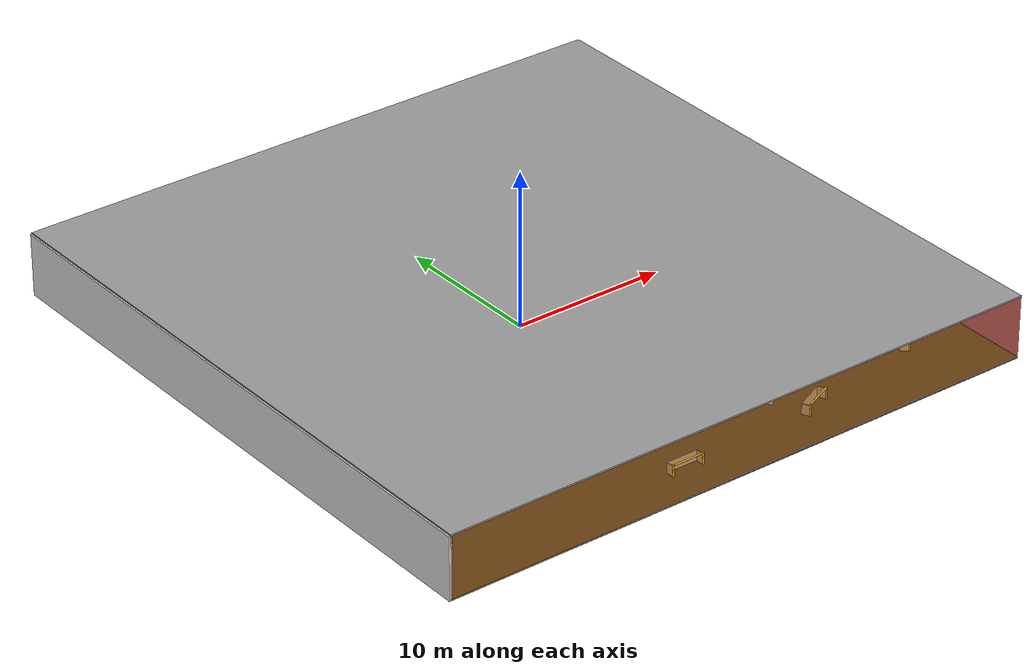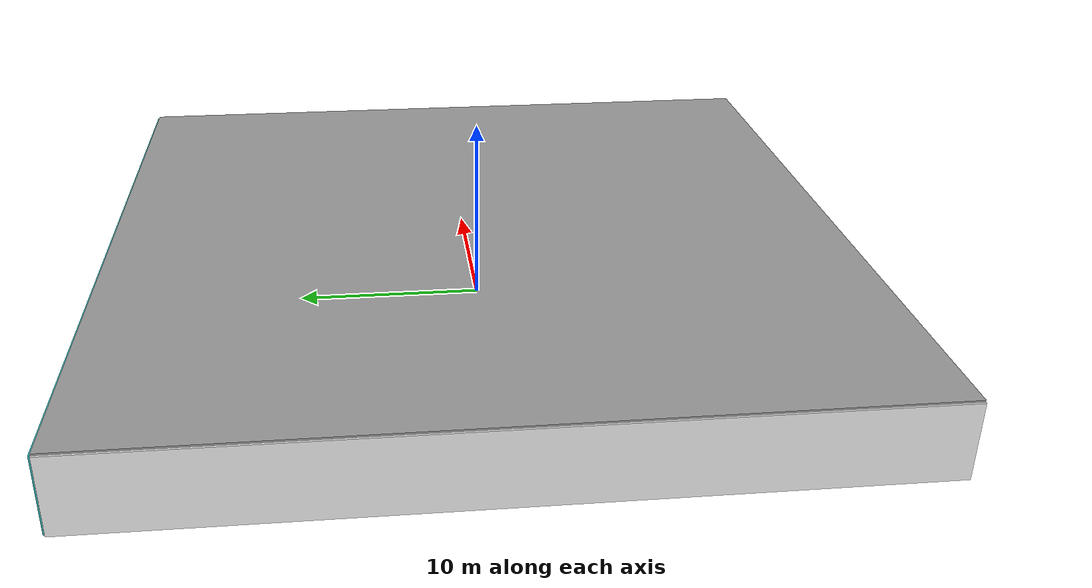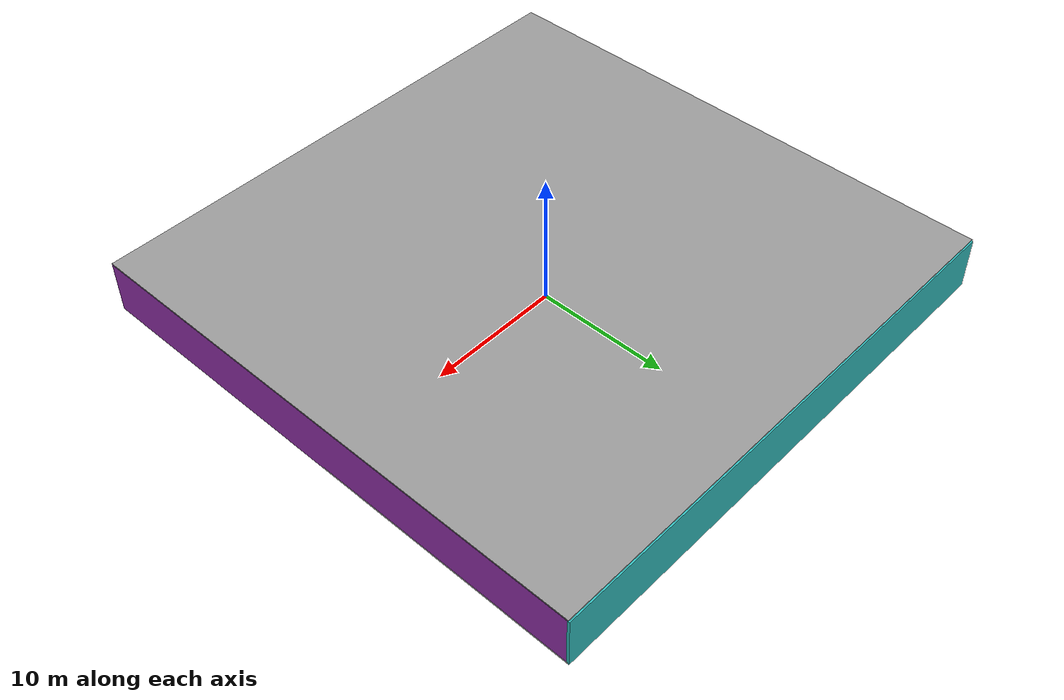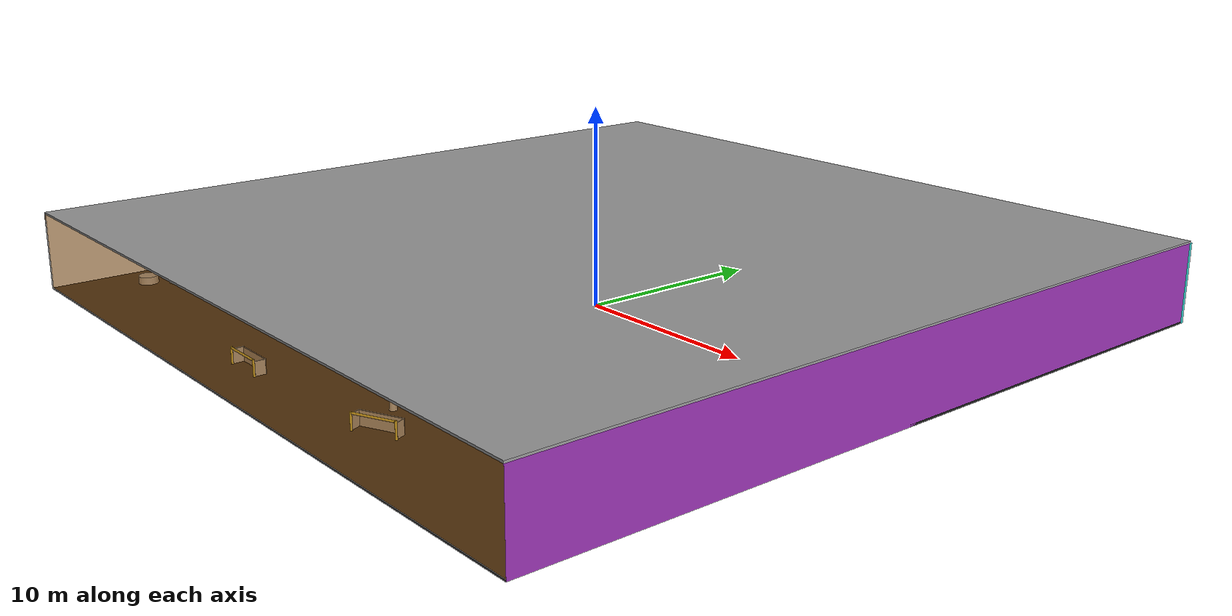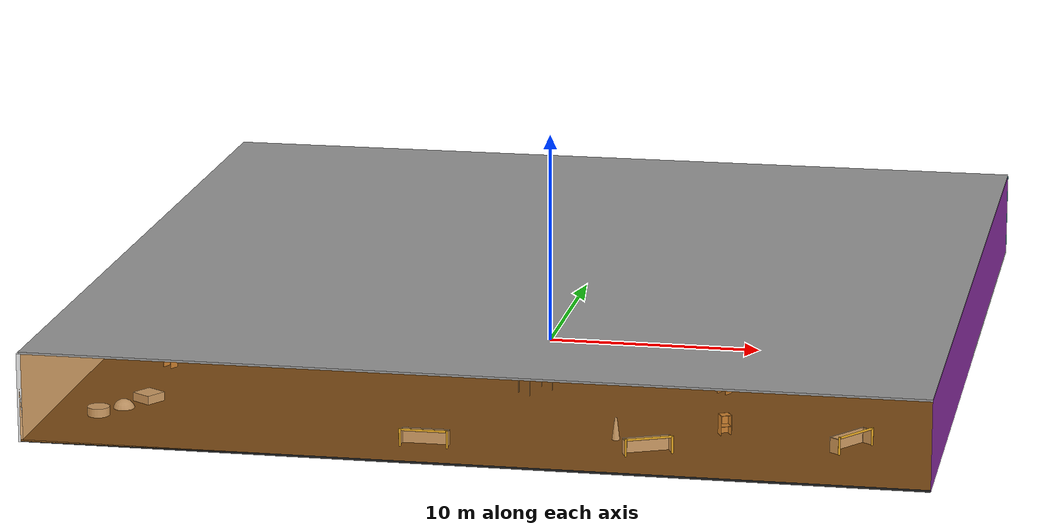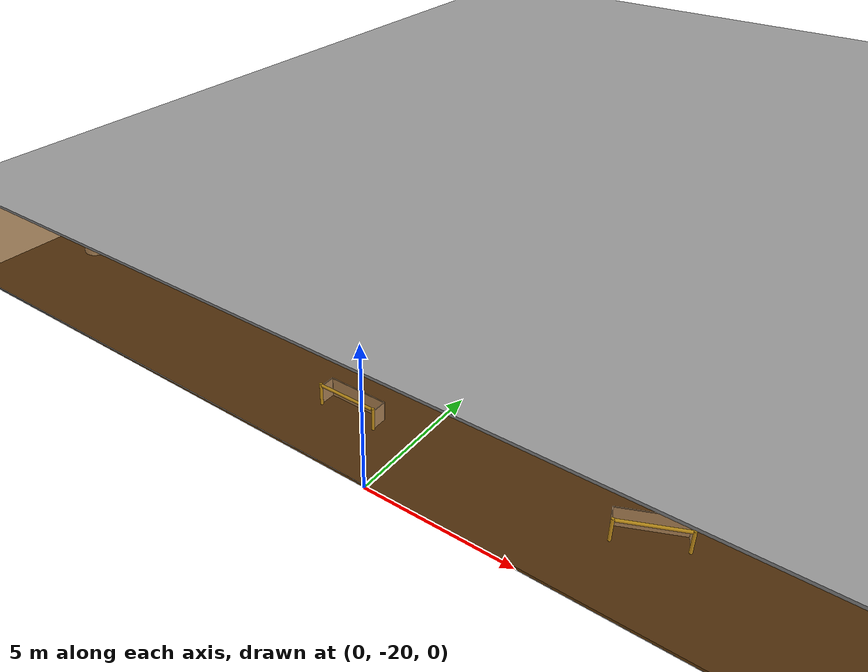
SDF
<sdf version="1.4">
 <world name="default">
  <physics type="ode">
   <max_step_size>0.001</max_step_size>
   <real_time_factor>1</real_time_factor>
   <real_time_update_rate>1000</real_time_update_rate>
   <gravity>0 0 -9.8</gravity>
  </physics>
  <scene><ambient>0.4 0.4 0.4 1</ambient><background>0.7 0.7 0.7 1</background><shadows>1</shadows></scene>
  <model name="Surrounding">
   <static>1</static>
   <link name="Ceiling">
    <collision name="Ceiling_Collision"><geometry><box><size>40 40 0.1</size></box></geometry></collision>
    <visual name="Ceiling_Visual">
     <geometry><box><size>40 40 0.1</size></box></geometry>
     <material>
      <script><uri>file://media/materials/scripts/gazebo.material</uri><name>Gazebo/GreyGradientSky</name></script>
     </material>
    </visual>
    <pose>0 0 4.05 0 0 0</pose>
   </link>
   <link name="Wall_South">
    <collision name="Wall_South_Collision">
     <geometry><box><size>40 0 4</size></box></geometry>
     <pose>0 0 2 0 -0 0</pose>
    </collision>
    <visual name="Wall_South_Visual">
     <pose>0 0 2 0 -0 0</pose>
     <geometry><box><size>40 0 4</size></box></geometry>
     <material>
      <script>
       <uri>file://media/materials/scripts/gazebo.material</uri>
       <name>Gazebo/OrangeTransparent</name>
      </script>
     </material>
    </visual>
    <velocity_decay><linear>0</linear><angular>0</angular></velocity_decay>
    <pose>0 -20 0 0 -0 0</pose>
   </link>
   <link name="Wall_East">
    <collision name="Wall_21_Collision">
     <geometry><box><size>40 0 4</size></box></geometry>
     <pose>0 0 2 0 -0 0</pose>
    </collision>
    <visual name="Wall_21_Visual">
     <pose>0 0 2 0 -0 0</pose>
     <geometry><box><size>40 0 4</size></box></geometry>
     <material>
      <script><uri>file://media/materials/scripts/gazebo.material</uri><name>Gazebo/PurpleGlow</name></script>
     </material>
    </visual>
    <velocity_decay><linear>0</linear><angular>0</angular></velocity_decay>
    <pose>20 0 0 0 -0 1.5708</pose>
   </link>
   <link name="Wall_North">
    <collision name="Wall_22_Collision">
     <geometry><box><size>40 0.2 4</size></box></geometry>
     <pose>0 0 2 0 -0 0</pose>
    </collision>
    <visual name="Wall_22_Visual">
     <pose>0 0 2 0 -0 0</pose>
     <geometry><box><size>40 0.2 4</size></box></geometry>
     <material>
      <script>
       <uri>file://media/materials/scripts/gazebo.material</uri>
       <name>Gazebo/TurquoiseGlowOutline</name>
      </script>
     </material>
    </visual>
    <velocity_decay><linear>0</linear><angular>0</angular></velocity_decay>
    <pose>0 20 0 0 -0 0</pose>
   </link>
   <link name="Wall_West">
    <collision name="Wall_23_Collision">
     <geometry><box><size>40 0.2 4</size></box></geometry>
     <pose>0 0 2 0 -0 0</pose>
    </collision>
    <visual name="Wall_23_Visual">
     <pose>0 0 2 0 -0 0</pose>
     <geometry><box><size>40 0.2 4</size></box></geometry>
     <material>
      <script><uri>file://media/materials/scripts/gazebo.material</uri><name>Gazebo/WhiteGlow</name></script>
     </material>
    </visual>
    <velocity_decay><linear>0</linear><angular>0</angular></velocity_decay>
    <pose>-20 0 0 0 0 -1.5708</pose>
   </link>
   <link name="Ground_link">
    <collision name="collision">
     <pose>0 0 .05 0 -0 0</pose>
     <geometry><box><size>40 40 0.1</size></box></geometry>
    </collision>
    <visual name="visual">
     <pose>0 0 .05 0 -0 0</pose>
     <geometry><box><size>40 40 0.1</size></box></geometry>
     <material>
      <script><uri>file://media/materials/scripts/gazebo.material</uri><name>Gazebo/Black</name></script>
     </material>
    </visual>
   </link>
   <static>1</static>
  </model>
  <spherical_coordinates>
   <surface_model>EARTH_WGS84</surface_model>
   <latitude_deg>0</latitude_deg>
   <longitude_deg>0</longitude_deg>
   <elevation>0</elevation>
   <heading_deg>0</heading_deg>
  </spherical_coordinates>
  <light name="lightball_0" type="diffuse">
   <diffuse>0.8 0.8 0.8 1</diffuse>
   <specular>0.2 0.2 0.2 1</specular>
   <attenuation>
    <range>100</range>
    <constant>0.7</constant>
    <linear>0.01</linear>
    <quadratic>0.001</quadratic>
   </attenuation>
   <direction>-0.5 0.1 -0.9</direction>
   <pose>-14.8650641351 19.6444188853 3.64982020703 0 0 0</pose>
  </light>
  <light name="lightball_1" type="diffuse">
   <diffuse>0.8 0.8 0.8 1</diffuse>
   <specular>0.2 0.2 0.2 1</specular>
   <attenuation>
    <range>100</range>
    <constant>0.7</constant>
    <linear>0.01</linear>
    <quadratic>0.001</quadratic>
   </attenuation>
   <direction>-0.5 0.1 -0.9</direction>
   <pose>-13.2243086572 -4.97496800238 2.10053421823 0 0 0</pose>
  </light>
  <include>
   <uri>model://textured_shapes</uri>
   <pose>-16.8476489165 -14.5412743631 0 0 0 2.57153487986</pose>
  </include>
  <include><uri>model://cabinet</uri><pose>-16.4925399515 -7.87539332028 0 0 0 1.02804026956</pose></include>
  <include>
   <uri>model://construction_cone</uri>
   <pose>-18.5449629178 -3.44669870532 0 0 0 2.41928473568</pose>
  </include>
  <include><uri>model://table</uri><pose>-18.2783213611 8.4764181541 0 0 0 1.89428499674</pose></include>
  <include><uri>model://cabinet</uri><pose>-17.1370995181 15.3471315203 0 0 0 1.13748163764</pose></include>
  <include><uri>model://table</uri><pose>-5.38861327068 -0.288317137918 0 0 0 1.63629290042</pose></include>
  <include>
   <uri>model://robocup_3Dsim_goal</uri>
   <pose>-2.37378974244 -17.9185017413 0 0 0 1.57263654104</pose>
  </include>
  <include><uri>model://cabinet</uri><pose>-3.43363754197 18.9749948115 0 0 0 1.95487241312</pose></include>
  <include><uri>model://table</uri><pose>0.902245661662 -8.73819509347 0 0 0 0.886151025214</pose></include>
  <include><uri>model://cabinet</uri><pose>-0.155658567918 9.12428605338 0 0 0 1.80243427137</pose></include>
  <include><uri>model://table</uri><pose>4.28996418479 10.1480853483 0 0 0 0.885607138724</pose></include>
  <include>
   <uri>model://robocup_3Dsim_goal</uri>
   <pose>7.49639612661 -17.2658736076 0 0 0 1.9995693809</pose>
  </include>
  <include>
   <uri>model://construction_cone</uri>
   <pose>5.70169140564 -15.2839912305 0 0 0 2.64066352237</pose>
  </include>
  <include>
   <uri>model://construction_cone</uri>
   <pose>6.70512122432 -0.341111290194 0 0 0 0.5963991028</pose>
  </include>
  <include><uri>model://cabinet</uri><pose>5.32477614204 4.45162523208 0 0 0 2.41423712547</pose></include>
  <include><uri>model://cabinet</uri><pose>10.2984861331 -13.6823331319 0 0 0 2.0352858552</pose></include>
  <include><uri>model://cabinet</uri><pose>9.40119298473 -7.45723673465 0 0 0 1.04602660839</pose></include>
  <include><uri>model://cabinet</uri><pose>10.6817492964 -4.89416712333 0 0 0 0.446336681207</pose></include>
  <include><uri>model://table</uri><pose>9.86078893623 4.61434320813 0 0 0 1.96188615755</pose></include>
  <include>
   <uri>model://robocup_3Dsim_goal</uri>
   <pose>16.2375254159 -14.9320844355 0 0 0 2.50740384667</pose>
  </include>
  <include>
   <uri>model://construction_cone</uri>
   <pose>14.9485771049 -5.97581973465 0 0 0 0.443594190798</pose>
  </include>
  <include>
   <uri>model://textured_shapes</uri>
   <pose>15.240997885 4.67535036843 0 0 0 1.58156693308</pose>
  </include>
  <include>
   <uri>model://construction_cone</uri>
   <pose>19.2668646446 -8.20923016061 0 0 0 0.0175532864819</pose>
  </include>
  <include><uri>model://cabinet</uri><pose>17.5299377762 3.6558291214 0 0 0 0.25614160011</pose></include>
 </world>
</sdf>

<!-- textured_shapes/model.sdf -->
<sdf version="1.6">
  <model name="textured_shapes">
    <pose>0 0 0.5 0 0 0</pose>
    <link name="box">
      <pose>0 -1.5 0 0 0 0</pose>
      <collision name="collision">
        <geometry>
          <box>
            <size>1 1 1</size>
          </box>
        </geometry>
      </collision>
      <visual name="visual">
        <geometry>
          <box>
            <size>1 1 1</size>
          </box>
        </geometry>
        <material>
          <script>
            <uri>model://../model_source/models/textured_shapes/materials/scripts</uri>
            <uri>model://../model_source/models/textured_shapes/materials/textures</uri>
            <name>TexturedShape/Squares</name>
          </script>
        </material>
      </visual>
    </link>
    <link name="sphere">
      <collision name="collision">
        <geometry>
          <sphere>
            <radius>0.5</radius>
          </sphere>
        </geometry>
      </collision>
      <visual name="visual">
        <geometry>
          <sphere>
            <radius>0.5</radius>
          </sphere>
        </geometry>
        <material>
          <script>
            <uri>model://../model_source/models/textured_shapes/materials/scripts</uri>
            <uri>model://../model_source/models/textured_shapes/materials/textures</uri>
            <name>TexturedShape/Squares</name>
          </script>
        </material>
      </visual>
    </link>
    <link name="cylinder">
      <pose>0 1.5 0 0 0 0</pose>
      <collision name="collision">
        <geometry>
          <cylinder>
            <radius>0.5</radius>
            <length>1</length>
          </cylinder>
        </geometry>
      </collision>
      <visual name="visual">
        <geometry>
          <cylinder>
            <radius>0.5</radius>
            <length>1</length>
          </cylinder>
        </geometry>
        <material>
          <script>
            <uri>model://../model_source/models/textured_shapes/materials/scripts</uri>
            <uri>model://../model_source/models/textured_shapes/materials/textures</uri>
            <name>TexturedShape/Squares</name>
          </script>
        </material>
      </visual>
    </link>
  </model>
</sdf>

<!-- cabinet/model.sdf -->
<sdf version="1.5">
  <model name="cabinet">
    <static>true</static>
    <link name="cabinet_bottom_plate">
      <inertial>
        <pose>0 0 -1 0 0 0</pose>
        <inertia>
          <ixx>2.050000</ixx>
          <ixy>0</ixy>
          <ixz>0</ixz>
          <iyy>2.050000</iyy>
          <iyz>0</iyz>
          <izz>2.050000</izz>
        </inertia>
        <mass>25.000000</mass>
      </inertial>
      <collision name="cabinet_bottom_plate_geom">
        <pose>0 0 0.010000 0 0 0</pose>
        <geometry>
          <box>
            <size>0.450000 0.450000 0.020000</size>
          </box>
        </geometry>
      </collision>
      <visual name="cabinet_bottom_plate_geom_visual">
        <pose>0 0 0.010000 0 0 0</pose>
        <geometry>
          <box>
            <size>0.450000 0.450000 0.020000</size>
          </box>
        </geometry>
        <material>
          <script>
            <uri>model://media/materials/scripts/gazebo.material</uri>
            <name>Gazebo/Wood</name>
          </script>
        </material>
      </visual>
      <collision name="cabinet_bottom_plate_geom_cabinet_back_plate">
        <pose>0.235000 0 0.510000 0 0 0</pose>
        <geometry>
          <box>
            <size>0.020000 0.450000 1.020000</size>
          </box>
        </geometry>
      </collision>
      <visual name="cabinet_bottom_plate_geom_cabinet_back_plate_visual">
        <pose>0.235000 0 0.510000 0 0 0</pose>
        <geometry>
          <box>
            <size>0.020000 0.450000 1.020000</size>
          </box>
        </geometry>
        <material>
          <script>
            <uri>model://media/materials/scripts/gazebo.material</uri>
            <name>Gazebo/Wood</name>
          </script>
        </material>
      </visual>
      <collision name="cabinet_bottom_plate_geom_cabinet_left_plate">
        <pose>0 0.235000 0.510000 0 0 0</pose>
        <geometry>
          <box>
            <size>0.450000 0.020000 1.020000</size>
          </box>
        </geometry>
      </collision>
      <visual name="cabinet_bottom_plate_geom_cabinet_left_plate_visual">
        <pose>0 0.235000 0.510000 0 0 0</pose>
        <geometry>
          <box>
            <size>0.450000 0.020000 1.020000</size>
          </box>
        </geometry>
        <material>
          <script>
            <uri>model://media/materials/scripts/gazebo.material</uri>
            <name>Gazebo/Wood</name>
          </script>
        </material>
      </visual>
      <collision name="cabinet_bottom_plate_geom_cabinet_middle_plate">
        <pose>0 0 0.510000 0 0 0</pose>
        <geometry>
          <box>
            <size>0.450000 0.450000 0.020000</size>
          </box>
        </geometry>
      </collision>
      <visual name="cabinet_bottom_plate_geom_cabinet_middle_plate_visual">
        <pose>0 0 0.510000 0 0 0</pose>
        <geometry>
          <box>
            <size>0.450000 0.450000 0.020000</size>
          </box>
        </geometry>
        <material>
          <script>
            <uri>model://media/materials/scripts/gazebo.material</uri>
            <name>Gazebo/Wood</name>
          </script>
        </material>
      </visual>
      <collision name="cabinet_bottom_plate_geom_cabinet_right_plate">
        <pose>0 -0.235000 0.510000 0 0 0</pose>
        <geometry>
          <box>
            <size>0.450000 0.020000 1.020000</size>
          </box>
        </geometry>
      </collision>
      <visual name="cabinet_bottom_plate_geom_cabinet_right_plate_visual">
        <pose>0 -0.235000 0.510000 0 0 0</pose>
        <geometry>
          <box>
            <size>0.450000 0.020000 1.020000</size>
          </box>
        </geometry>
        <material>
          <script>
            <uri>model://media/materials/scripts/gazebo.material</uri>
            <name>Gazebo/Wood</name>
          </script>
        </material>
      </visual>
      <collision name="cabinet_bottom_plate_geom_cabinet_top_plate">
        <pose>0 0 1.010000 0 0 0</pose>
        <geometry>
          <box>
            <size>0.450000 0.450000 0.020000</size>
          </box>
        </geometry>
      </collision>
      <visual name="cabinet_bottom_plate_geom_cabinet_top_plate_visual">
        <pose>0 0 1.010000 0 0 0</pose>
        <geometry>
          <box>
            <size>0.450000 0.450000 0.020000</size>
          </box>
        </geometry>
        <material>
          <script>
            <uri>model://media/materials/scripts/gazebo.material</uri>
            <name>Gazebo/Wood</name>
          </script>
        </material>
      </visual>
    </link>
  </model>
</sdf>

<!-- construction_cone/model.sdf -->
<sdf version="1.5">
  <model name="Construction Cone">
    <link name="link">
      <collision name="collision">
        <geometry>
          <mesh>
            <scale>10 10 10</scale>
            <uri>file://isr-testbed/construction_cone/meshes/construction_cone.dae</uri>
          </mesh>
        </geometry>
      </collision>
      <visual name="visual">
        <geometry>
          <mesh>
            <scale>10 10 10</scale>
            <uri>file://isr-testbed/construction_cone/meshes/construction_cone.dae</uri>
          </mesh>
        </geometry>
      </visual>
    </link>
  </model>
</sdf>

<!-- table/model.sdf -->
<sdf version="1.5">
  <model name="table">
    <static>true</static>
    <link name="link">
      <collision name="surface">
        <pose>0 0 1.0 0 0 0</pose>
        <geometry>
          <box>
            <size>1.5 0.8 0.03</size>
          </box>
        </geometry>
        <surface>
          <friction>
            <ode>
              <mu>0.6</mu>
              <mu2>0.6</mu2>
            </ode>
          </friction>
        </surface>
      </collision>
      <visual name="visual1">
        <pose>0 0 1.0 0 0 0</pose>
        <geometry>
          <box>
            <size>1.5 0.8 0.03</size>
          </box>
        </geometry>
        <material>
          <script>
            <uri>model://media/materials/scripts/gazebo.material</uri>
            <name>Gazebo/Wood</name>
          </script>
        </material>
      </visual>
      <collision name="front_left_leg">
        <pose>0.68 0.38 0.5 0 0 0</pose>
        <geometry>
          <cylinder>
            <radius>0.02</radius>
            <length>1.0</length>
          </cylinder>
        </geometry>
      </collision>
      <visual name="front_left_leg">
        <pose>0.68 0.38 0.5 0 0 0</pose>
        <geometry>
          <cylinder>
            <radius>0.02</radius>
            <length>1.0</length>
          </cylinder>
        </geometry>
        <material>
          <script>
            <uri>model://media/materials/scripts/gazebo.material</uri>
            <name>Gazebo/Grey</name>
          </script>
        </material>
      </visual>
      <collision name="front_right_leg">
        <pose>0.68 -0.38 0.5 0 0 0</pose>
        <geometry>
          <cylinder>
            <radius>0.02</radius>
            <length>1.0</length>
          </cylinder>
        </geometry>
      </collision>
      <visual name="front_right_leg">
        <pose>0.68 -0.38 0.5 0 0 0</pose>
        <geometry>
          <cylinder>
            <radius>0.02</radius>
            <length>1.0</length>
          </cylinder>
        </geometry>
        <material>
          <script>
            <uri>model://media/materials/scripts/gazebo.material</uri>
            <name>Gazebo/Grey</name>
          </script>
        </material>
      </visual>
      <collision name="back_right_leg">
        <pose>-0.68 -0.38 0.5 0 0 0</pose>
        <geometry>
          <cylinder>
            <radius>0.02</radius>
            <length>1.0</length>
          </cylinder>
        </geometry>
      </collision>
      <visual name="back_right_leg">
        <pose>-0.68 -0.38 0.5 0 0 0</pose>
        <geometry>
          <cylinder>
            <radius>0.02</radius>
            <length>1.0</length>
          </cylinder>
        </geometry>
        <material>
          <script>
            <uri>model://media/materials/scripts/gazebo.material</uri>
            <name>Gazebo/Grey</name>
          </script>
        </material>
      </visual>
      <collision name="back_left_leg">
        <pose>-0.68 0.38 0.5 0 0 0</pose>
        <geometry>
          <cylinder>
            <radius>0.02</radius>
            <length>1.0</length>
          </cylinder>
        </geometry>
      </collision>
      <visual name="back_left_leg">
        <pose>-0.68 0.38 0.5 0 0 0</pose>
        <geometry>
          <cylinder>
            <radius>0.02</radius>
            <length>1.0</length>
          </cylinder>
        </geometry>
        <material>
          <script>
            <uri>model://media/materials/scripts/gazebo.material</uri>
            <name>Gazebo/Grey</name>
          </script>
        </material>
      </visual>
    </link>
  </model>
</sdf>

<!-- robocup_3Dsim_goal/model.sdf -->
<sdf version="1.5">
  <model name="robocup_3d_goal">
    <static>true</static>
    <link name="left_post">
      <pose>0 1.05 0.45 0 0 0</pose>
      <collision name="collision">
        <geometry>
          <cylinder>
            <radius>0.05</radius>
            <length>0.9</length>
          </cylinder>
        </geometry>
      </collision>
      <visual name="visual">
        <geometry>
          <cylinder>
            <radius>0.05</radius>
            <length>0.9</length>
          </cylinder>
        </geometry>
        <material>
          <script>
            <uri>file://media/materials/scripts/gazebo.material</uri>
            <name>Gazebo/ZincYellow</name>
          </script>
        </material>
      </visual>
    </link>
    <link name="left_support_horiz_lower">
      <pose>0.30 1.05 0.01 0 0 0</pose>
      <collision name="collision">
        <geometry>
          <box>
            <size>0.50 0.02 0.02</size>
          </box>
        </geometry>
      </collision>
      <visual name="visual">
        <geometry>
          <box>
            <size>0.50 0.02 0.02</size>
          </box>
        </geometry>
        <material>
          <script>
            <uri>file://media/materials/scripts/gazebo.material</uri>
            <name>Gazebo/White</name>
          </script>
        </material>
      </visual>
    </link>
    <link name="left_support_horiz_upper">
      <pose>0.30 1.05 0.79 0 0 0</pose>
      <collision name="collision">
        <geometry>
          <box>
            <size>0.50 0.02 0.02</size>
          </box>
        </geometry>
      </collision>
      <visual name="visual">
        <geometry>
          <box>
            <size>0.50 0.02 0.02</size>
          </box>
        </geometry>
        <material>
          <script>
            <uri>file://media/materials/scripts/gazebo.material</uri>
            <name>Gazebo/White</name>
          </script>
        </material>
      </visual>
    </link>
    <link name="left_support_vertical">
      <pose>0.56 1.05 0.4 0 1.5708 0</pose>
      <collision name="collision">
        <geometry>
          <box>
            <size>0.80 0.02 0.02</size>
          </box>
        </geometry>
      </collision>
      <visual name="visual">
        <geometry>
          <box>
            <size>0.80 0.02 0.02</size>
          </box>
        </geometry>
        <material>
          <script>
            <uri>file://media/materials/scripts/gazebo.material</uri>
            <name>Gazebo/White</name>
          </script>
        </material>
      </visual>
    </link>
    <link name="right_support_horiz_lower">
      <pose>0.30 -1.05 0.01 0 0 0</pose>
      <collision name="collision">
        <geometry>
          <box>
            <size>0.50 0.02 0.02</size>
          </box>
        </geometry>
      </collision>
      <visual name="visual">
        <geometry>
          <box>
            <size>0.50 0.02 0.02</size>
          </box>
        </geometry>
        <material>
          <script>
            <uri>file://media/materials/scripts/gazebo.material</uri>
            <name>Gazebo/White</name>
          </script>
        </material>
      </visual>
    </link>
    <link name="right_support_horiz_upper">
      <pose>0.30 -1.05 0.79 0 0 0</pose>
      <collision name="collision">
        <geometry>
          <box>
            <size>0.50 0.02 0.02</size>
          </box>
        </geometry>
      </collision>
      <visual name="visual">
        <geometry>
          <box>
            <size>0.50 0.02 0.02</size>
          </box>
        </geometry>
        <material>
          <script>
            <uri>file://media/materials/scripts/gazebo.material</uri>
            <name>Gazebo/White</name>
          </script>
        </material>
      </visual>
    </link>
    <link name="right_support_vertical">
      <pose>0.56 -1.05 0.4 0 1.5708 0</pose>
      <collision name="collision">
        <geometry>
          <box>
            <size>0.80 0.02 0.02</size>
          </box>
        </geometry>
      </collision>
      <visual name="visual">
        <geometry>
          <box>
            <size>0.80 0.02 0.02</size>
          </box>
        </geometry>
        <material>
          <script>
            <uri>file://media/materials/scripts/gazebo.material</uri>
            <name>Gazebo/White</name>
          </script>
        </material>
      </visual>
    </link>
    <link name="center_support_horiz_lower">
      <pose>0.56 0 0.01 0 1.5708 0</pose>
      <collision name="collision">
        <geometry>
          <box>
            <size>0.02 2.08 0.02</size>
          </box>
        </geometry>
      </collision>
      <visual name="visual">
        <geometry>
          <box>
            <size>0.02 2.08 0.02</size>
          </box>
        </geometry>
        <material>
          <script>
            <uri>file://media/materials/scripts/gazebo.material</uri>
            <name>Gazebo/White</name>
          </script>
        </material>
      </visual>
    </link>
    <link name="center_support_horiz_upper">
      <pose>0.56 0 0.79 0 1.5708 0</pose>
      <collision name="collision">
        <geometry>
          <box>
            <size>0.02 2.08 0.02</size>
          </box>
        </geometry>
      </collision>
      <visual name="visual">
        <geometry>
          <box>
            <size>0.02 2.08 0.02</size>
          </box>
        </geometry>
        <material>
          <script>
            <uri>file://media/materials/scripts/gazebo.material</uri>
            <name>Gazebo/White</name>
          </script>
        </material>
      </visual>
    </link>
    <link name="right_post">
      <pose>0 -1.05 0.45 0 0 0</pose>
      <collision name="collision">
        <geometry>
          <cylinder>
            <radius>0.05</radius>
            <length>0.9</length>
          </cylinder>
        </geometry>
      </collision>
      <visual name="visual">
        <geometry>
          <cylinder>
            <radius>0.05</radius>
            <length>0.9</length>
          </cylinder>
        </geometry>
        <material>
          <script>
            <uri>file://media/materials/scripts/gazebo.material</uri>
            <name>Gazebo/ZincYellow</name>
          </script>
        </material>
      </visual>
    </link>
    <link name="crossbar">
      <pose>0 0 0.85 1.57 1.57 0</pose>
      <collision name="collision">
        <geometry>
          <cylinder>
            <radius>0.05</radius>
            <length>2.0</length>
          </cylinder>
        </geometry>
      </collision>
      <visual name="visual">
        <geometry>
          <cylinder>
            <radius>0.05</radius>
            <length>2.0</length>
          </cylinder>
        </geometry>
        <material>
          <script>
            <uri>file://media/materials/scripts/gazebo.material</uri>
            <name>Gazebo/ZincYellow</name>
          </script>
        </material>
      </visual>
    </link>
    <link name="center_net">
      <pose>0.56 0 0.40 0 0 0</pose>
      <collision name="collision">
        <geometry>
          <box>
            <size>0.01 2.1 0.80</size>
          </box>
        </geometry>
      </collision>
      <visual name="visual">
        <geometry>
          <box>
            <size>0.01 2.1 0.80</size>
          </box>
        </geometry>
        <material>
          <script>
            <uri>model://../model_source/models/robocup09_spl_field/materials/scripts/</uri>
            <uri>model://../model_source/models/robocup09_spl_field/materials/textures/</uri>
            <name>RoboCup/Net</name>
          </script>
        </material>
      </visual>
    </link>
    <link name="left_net">
      <pose>0.30 1.05 0.40 0 0 0</pose>
      <collision name="collision">
        <geometry>
          <box>
            <size>0.50 0.01 0.76</size>
          </box>
        </geometry>
      </collision>
      <visual name="visual">
        <geometry>
          <box>
            <size>0.50 0.01 0.76</size>
          </box>
        </geometry>
        <material>
          <script>
            <uri>model://../model_source/models/robocup09_spl_field/materials/scripts/</uri>
            <uri>model://../model_source/models/robocup09_spl_field/materials/textures/</uri>
            <name>RoboCup/Net</name>
          </script>
        </material>
      </visual>
    </link>
    <link name="right_net">
      <pose>0.30 -1.05 0.40 0 0 0</pose>
      <collision name="collision">
        <geometry>
          <box>
            <size>0.50 0.01 0.76</size>
          </box>
        </geometry>
      </collision>
      <visual name="visual">
        <geometry>
          <box>
            <size>0.50 0.01 0.76</size>
          </box>
        </geometry>
        <material>
          <script>
            <uri>model://../model_source/models/robocup09_spl_field/materials/scripts/</uri>
            <uri>model://../model_source/models/robocup09_spl_field/materials/textures/</uri>
            <name>RoboCup/Net</name>
          </script>
        </material>
      </visual>
    </link>
  </model>
</sdf>
